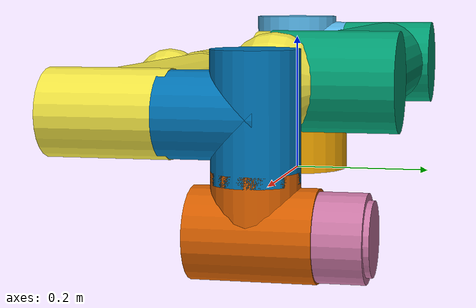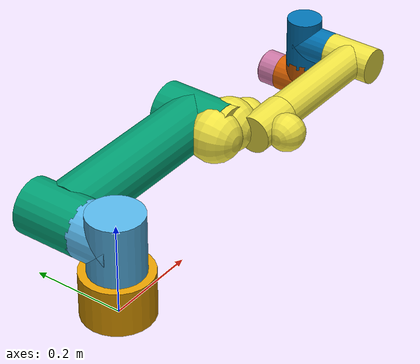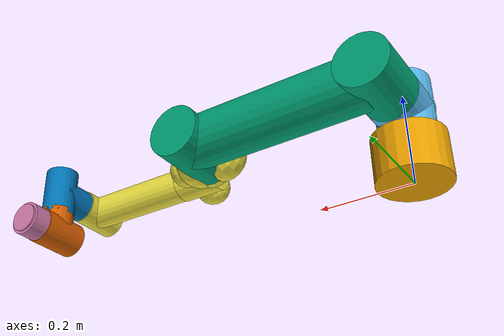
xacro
<?xml version="1.0" ?>
<robot name="/home/diogo/catkin_ws/src/robots/ribot/ribot_description/urdf/UR5e.urdf" version="1.0">
  <link name="base_link">
    <visual>
      <origin xyz="0.0 0.0 0.05" rpy="0.0 0.0 0.0"/>
      <geometry>
        <cylinder radius="0.076" length="0.1"/>
      </geometry>
    </visual>
    <collision>
      <origin xyz="0.0 0.0 0.05" rpy="0.0 0.0 0.0"/>
      <geometry>
        <cylinder radius="0.076" length="0.1"/>
      </geometry>
    </collision>
  </link>
  <joint name="shoulder_pan_joint" type="revolute">
    <origin xyz="0.0 0.0 0.163" rpy="0.0 0.0 0.0"/>
    <axis xyz="0.0 0.0 1.0"/>
    <parent link="base_link"/>
    <child link="shoulder_link"/>
    <limit effort="150.0" lower="-6.28319" upper="6.28319" velocity="3.14"/>
  </joint>
  <link name="shoulder_link">
    <visual>
      <origin xyz="0.0 0.0 0.0" rpy="0.0 0.0 0.0"/>
      <geometry>
        <cylinder radius="0.059" length="0.135"/>
      </geometry>
    </visual>
    <collision>
      <origin xyz="0.0 0.0 0.0" rpy="0.0 0.0 0.0"/>
      <geometry>
        <cylinder radius="0.059" length="0.135"/>
      </geometry>
    </collision>
    <visual>
      <origin xyz="0.0 0.03 0.0" rpy="-1.570796 0.0 0.0"/>
      <geometry>
        <cylinder radius="0.059" length="0.093"/>
      </geometry>
    </visual>
    <collision>
      <origin xyz="0.0 0.03 0.0" rpy="-1.570796 0.0 0.0"/>
      <geometry>
        <cylinder radius="0.059" length="0.093"/>
      </geometry>
    </collision>
  </link>
  <joint name="shoulder_lift_joint" type="revolute">
    <origin xyz="0.0 0.138 0.0" rpy="0.0 1.570796 0.0"/>
    <axis xyz="0.0 1.0 0.0"/>
    <parent link="shoulder_link"/>
    <child link="upper_arm_link"/>
    <limit effort="150.0" lower="-6.28319" upper="6.28319" velocity="3.14"/>
  </joint>
  <link name="upper_arm_link">
    <visual>
      <origin xyz="0.0 0.0 0.22" rpy="0.0 0.0 0.0"/>
      <geometry>
        <cylinder radius="0.059" length="0.407"/>
      </geometry>
    </visual>
    <collision>
      <origin xyz="0.0 0.0 0.22" rpy="0.0 0.0 0.0"/>
      <geometry>
        <cylinder radius="0.059" length="0.407"/>
      </geometry>
    </collision>
    <visual>
      <origin xyz="0.0 0.0 0.0" rpy="-1.570796 0.0 0.0"/>
      <geometry>
        <cylinder radius="0.059" length="0.133"/>
      </geometry>
    </visual>
    <collision>
      <origin xyz="0.0 0.0 0.0" rpy="-1.570796 0.0 0.0"/>
      <geometry>
        <cylinder radius="0.059" length="0.133"/>
      </geometry>
    </collision>
    <visual>
      <origin xyz="0.0 -0.005 0.424" rpy="-1.570796 0.0 0.0"/>
      <geometry>
        <cylinder radius="0.059" length="0.149"/>
      </geometry>
    </visual>
    <collision>
      <origin xyz="0.0 -0.005 0.424" rpy="-1.570796 0.0 0.0"/>
      <geometry>
        <cylinder radius="0.059" length="0.149"/>
      </geometry>
    </collision>
  </link>
  <joint name="elbow_joint" type="revolute">
    <origin xyz="0.0 -0.131 0.425" rpy="0.0 0.0 0.0"/>
    <axis xyz="0.0 1.0 0.0"/>
    <parent link="upper_arm_link"/>
    <child link="forearm_link"/>
    <limit effort="150.0" lower="-3.14159" upper="3.14159" velocity="3.14"/>
  </joint>
  <link name="forearm_link">
    <visual>
      <origin xyz="0.0 0.0 0.207" rpy="0.0 0.0 0.0"/>
      <geometry>
        <cylinder radius="0.038" length="0.36"/>
      </geometry>
    </visual>
    <collision>
      <origin xyz="0.0 0.0 0.207" rpy="0.0 0.0 0.0"/>
      <geometry>
        <cylinder radius="0.038" length="0.36"/>
      </geometry>
    </collision>
    <visual>
      <origin xyz="0.0 -0.001 0.39" rpy="-1.570796 0.0 0.0"/>
      <geometry>
        <cylinder radius="0.039" length="0.109"/>
      </geometry>
    </visual>
    <collision>
      <origin xyz="0.0 -0.001 0.39" rpy="-1.570796 0.0 0.0"/>
      <geometry>
        <cylinder radius="0.039" length="0.109"/>
      </geometry>
    </collision>
    <visual>
      <origin xyz="0.0 0.06 0.0" rpy="1.570796 0.0 0.0"/>
      <geometry>
        <cylinder radius="0.058" length="0.05"/>
      </geometry>
    </visual>
    <collision>
      <origin xyz="0.0 0.06 0.0" rpy="1.570796 0.0 0.0"/>
      <geometry>
        <cylinder radius="0.058" length="0.05"/>
      </geometry>
    </collision>
    <visual>
      <origin xyz="0.0 0.06 0.025" rpy="1.570796 0.0 0.0"/>
      <geometry>
        <sphere radius="0.058"/>
      </geometry>
    </visual>
    <collision>
      <origin xyz="0.0 0.06 0.025" rpy="1.570796 0.0 0.0"/>
      <geometry>
        <sphere radius="0.058"/>
      </geometry>
    </collision>
    <visual>
      <origin xyz="0.0 0.06 -0.025" rpy="1.570796 0.0 0.0"/>
      <geometry>
        <sphere radius="0.058"/>
      </geometry>
    </visual>
    <collision>
      <origin xyz="0.0 0.06 -0.025" rpy="1.570796 0.0 0.0"/>
      <geometry>
        <sphere radius="0.058"/>
      </geometry>
    </collision>
    <visual>
      <origin xyz="0.0 0.0 0.07" rpy="0.0 0.0 0.0"/>
      <geometry>
        <cylinder radius="0.04" length="0.1"/>
      </geometry>
    </visual>
    <collision>
      <origin xyz="0.0 0.0 0.07" rpy="0.0 0.0 0.0"/>
      <geometry>
        <cylinder radius="0.04" length="0.1"/>
      </geometry>
    </collision>
    <visual>
      <origin xyz="0.0 0.05 0.07" rpy="0.0 0.0 0.0"/>
      <geometry>
        <sphere radius="0.04"/>
      </geometry>
    </visual>
    <collision>
      <origin xyz="0.0 0.05 0.07" rpy="0.0 0.0 0.0"/>
      <geometry>
        <sphere radius="0.04"/>
      </geometry>
    </collision>
    <visual>
      <origin xyz="0.0 -0.05 0.07" rpy="0.0 0.0 0.0"/>
      <geometry>
        <sphere radius="0.04"/>
      </geometry>
    </visual>
    <collision>
      <origin xyz="0.0 -0.05 0.07" rpy="0.0 0.0 0.0"/>
      <geometry>
        <sphere radius="0.04"/>
      </geometry>
    </collision>
  </link>
  <joint name="wrist_1_joint" type="revolute">
    <origin xyz="0.0 0.0 0.392" rpy="0.0 1.570796 0.0"/>
    <axis xyz="0.0 1.0 0.0"/>
    <parent link="forearm_link"/>
    <child link="wrist_1_link"/>
    <limit effort="28.0" lower="-6.28319" upper="6.28319" velocity="6.28"/>
  </joint>
  <link name="wrist_1_link">
    <visual>
      <origin xyz="0.0 0.089 0.0" rpy="-1.570796 0.0 0.0"/>
      <geometry>
        <cylinder radius="0.038" length="0.086"/>
      </geometry>
    </visual>
    <collision>
      <origin xyz="0.0 0.089 0.0" rpy="-1.570796 0.0 0.0"/>
      <geometry>
        <cylinder radius="0.038" length="0.086"/>
      </geometry>
    </collision>
    <visual>
      <origin xyz="0.0 0.126 0.0" rpy="0.0 0.0 0.0"/>
      <geometry>
        <cylinder radius="0.038" length="0.112"/>
      </geometry>
    </visual>
    <collision>
      <origin xyz="0.0 0.126 0.0" rpy="0.0 0.0 0.0"/>
      <geometry>
        <cylinder radius="0.038" length="0.112"/>
      </geometry>
    </collision>
  </link>
  <joint name="wrist_2_joint" type="revolute">
    <origin xyz="0.0 0.127 0.0" rpy="0.0 0.0 0.0"/>
    <axis xyz="0.0 0.0 1.0"/>
    <parent link="wrist_1_link"/>
    <child link="wrist_2_link"/>
    <limit effort="28.0" lower="-6.28319" upper="6.28319" velocity="6.28"/>
  </joint>
  <link name="wrist_2_link">
    <visual>
      <origin xyz="0.0 -0.001 0.0995" rpy="-1.570796 0.0 0.0"/>
      <geometry>
        <cylinder radius="0.04" length="0.108"/>
      </geometry>
    </visual>
    <collision>
      <origin xyz="0.0 -0.001 0.0995" rpy="-1.570796 0.0 0.0"/>
      <geometry>
        <cylinder radius="0.04" length="0.108"/>
      </geometry>
    </collision>
    <visual>
      <origin xyz="0.0 -0.001 0.0676" rpy="0.0 0.0 0.0"/>
      <geometry>
        <cylinder radius="0.038" length="0.043"/>
      </geometry>
    </visual>
    <collision>
      <origin xyz="0.0 -0.001 0.0676" rpy="0.0 0.0 0.0"/>
      <geometry>
        <cylinder radius="0.038" length="0.043"/>
      </geometry>
    </collision>
  </link>
  <joint name="wrist_3_joint" type="revolute">
    <origin xyz="0.0 0.0 0.1" rpy="0.0 0.0 0.0"/>
    <axis xyz="0.0 1.0 0.0"/>
    <parent link="wrist_2_link"/>
    <child link="wrist_3_link"/>
    <limit effort="28.0" lower="-6.28319" upper="6.28319" velocity="6.28"/>
  </joint>
  <link name="wrist_3_link">
    <visual>
      <origin xyz="0.0 0.07 0.0" rpy="-1.570796 0.0 0.0"/>
      <geometry>
        <cylinder radius="0.038" length="0.048"/>
      </geometry>
    </visual>
    <collision>
      <origin xyz="0.0 0.07 0.0" rpy="-1.570796 0.0 0.0"/>
      <geometry>
        <cylinder radius="0.038" length="0.048"/>
      </geometry>
    </collision>
    <visual>
      <origin xyz="0.0 0.09 0.0" rpy="-1.570796 0.0 0.0"/>
      <geometry>
        <cylinder radius="0.032" length="0.018"/>
      </geometry>
    </visual>
    <collision>
      <origin xyz="0.0 0.09 0.0" rpy="-1.570796 0.0 0.0"/>
      <geometry>
        <cylinder radius="0.032" length="0.018"/>
      </geometry>
    </collision>
  </link>
  <link name="accelerometer"/>
  <joint name="wrist_3_link_accelerometer_joint" type="fixed">
    <origin xyz="0.019238888890275307 0.15193096628574793 -0.05789699339185683" rpy="0.0025842560847462934 0.0002126792260227153 -0.002789011916712503"/>
    <parent link="wrist_3_link"/>
    <child link="accelerometer"/>
  </joint>
  <link name="gyro"/>
  <joint name="wrist_3_link_gyro_joint" type="fixed">
    <origin xyz="0.0 0.1 0.0" rpy="0.0 0.0 0.0"/>
    <parent link="wrist_3_link"/>
    <child link="gyro"/>
  </joint>
</robot>
